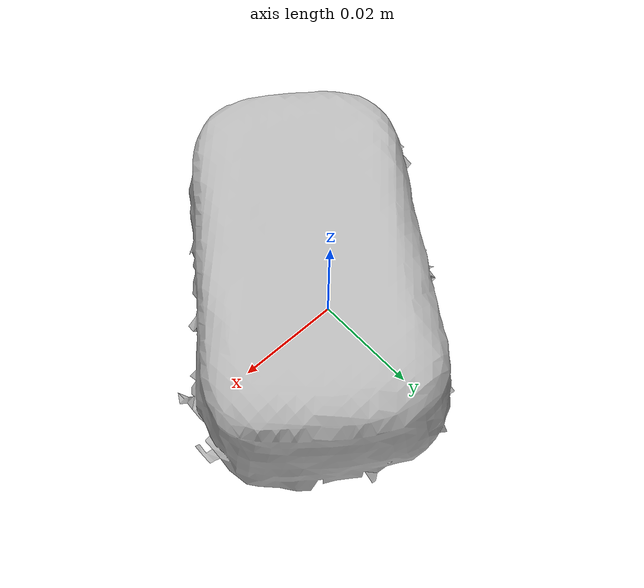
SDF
<?xml version='1.0'?>
<sdf version="1.4">
  <model name="h_lego_duplo">
    <static>false</static>
    <link name="link">
      <inertial>
        <pose>0.0026957183781390406 -0.0024514096389094964 0.01674408230806201 -1.6525207265593458 -1.5073385458454605 -0.5322831027398796</pose>
        <mass>4.349452729297724e-05</mass>
        <inertia>
          <ixx>2.238718219994708e-08</ixx>
          <ixy>-1.0318216270865712e-24</ixy>
          <ixz>-2.2589886453185612e-24</ixz>
          <iyy>1.597609916932358e-08</iyy>
          <iyz>-3.09904280614953e-24</iyz>
          <izz>4.156761201826645e-09</izz>
        </inertia>
      </inertial>
      <collision name="collision">
        <geometry>
          <mesh>
            <!-- Use a downsampled mesh for collisions -->
            <uri>model://073-h_lego_duplo/downsampled.obj</uri>
	        </mesh>
        </geometry>
        <surface>
      </surface>
      </collision>
      <visual name="visual">
        <geometry>
          <mesh>
            <uri>model://073-h_lego_duplo/tsdf/textured.obj</uri>
	        </mesh>
        </geometry>
        <material>
          <script>
            <uri>model://073-h_lego_duplo/h_lego_duplo.material</uri>
            <name>h_lego_duplo</name>
          </script>
        </material>
      </visual>
    </link>
  </model>
</sdf>
